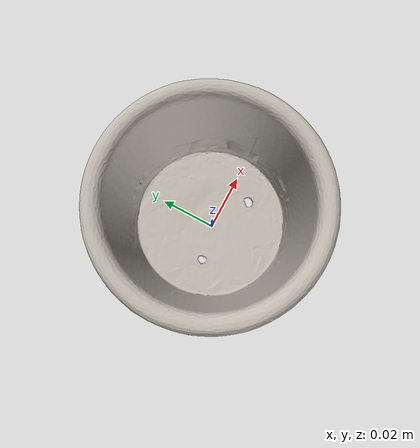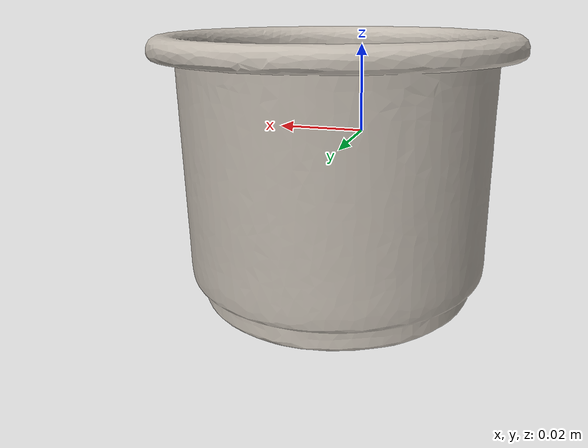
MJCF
<mujoco model="bread">
  <asset>
    <mesh file="nontextured.stl" name="obj_mesh" scale="0.8 0.8 0.8"/>
    <texture file="../../../../../textures/bread.png" type="2d" name="tex-bread" />
    <material name="bread" reflectance="0.7" texrepeat="15 15" texture="tex-bread" texuniform="true"/>
  </asset>
  <worldbody>
    <body>
      <body name="collision">
        <geom pos="0.0237355 0.016795500000000005 -0.0371915" mesh="obj_mesh" type="mesh" solimp="0.998 0.998 0.001" solref="0.001 1" density="50" friction="0.95 0.3 0.1"  material="bread" group="1" condim="4"/>
      </body>
      <body name="visual">
        <geom pos="0.0237355 0.016795500000000005 -0.0371915" mesh="obj_mesh" type="mesh" material="bread"  conaffinity="0" contype="0"  group="0" mass="0.0001"/>
        <geom pos="0.0237355 0.016795500000000005 -0.0371915" mesh="obj_mesh" type="mesh" material="bread"  conaffinity="0" contype="0"  group="1" mass="0.0001"/>
      </body>
      <site rgba="0 0 0 0" size="0.005" pos="0 0 -0.0377445" name="bottom_site"/>
      <site rgba="0 0 0 0" size="0.005" pos="0 0 0.0377445" name="top_site"/>
      <site rgba="0 0 0 0" size="0.005" pos="0.051201500000000004 0.0514975 0.0377445" name="horizontal_radius_site"/>
    </body>
  </worldbody>
</mujoco>
